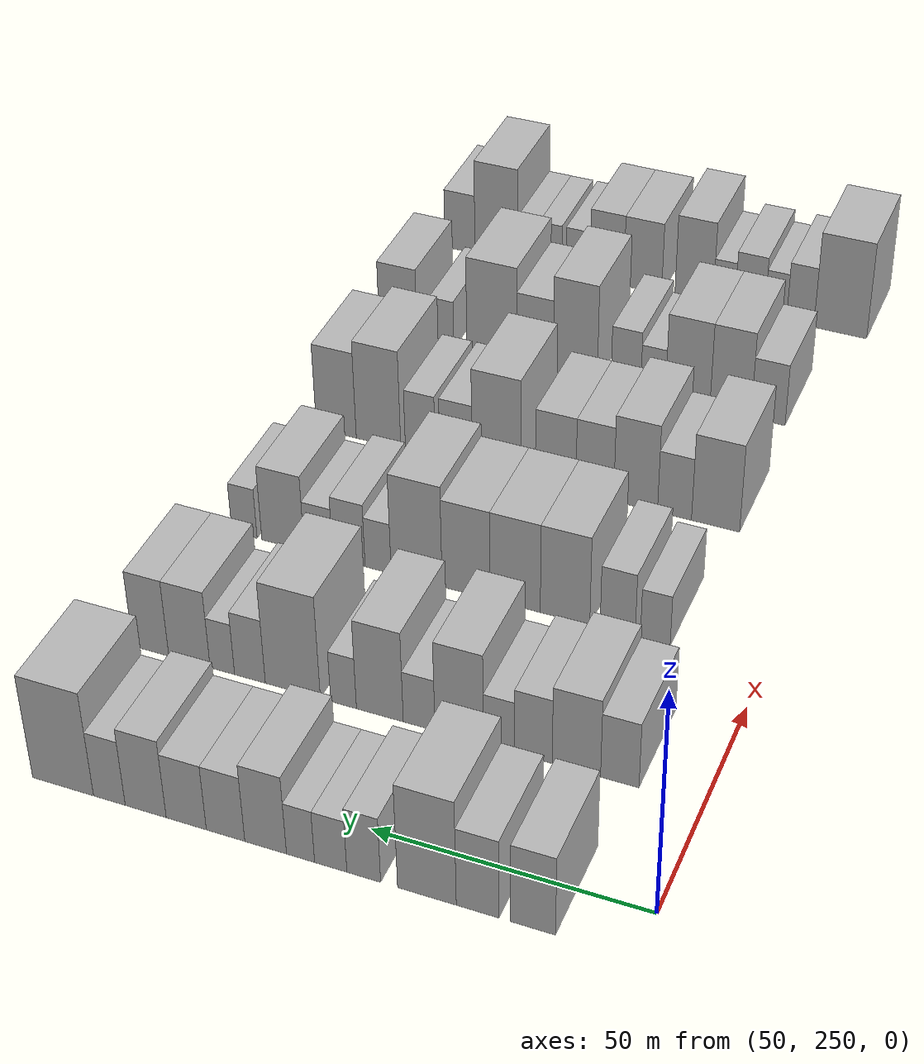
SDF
<sdf version="1.6">
 <world name="default">
  <model name="building_90">
   <static>1</static>
   <pose>50.0000 267.4633 0 0.000000 0.000000 0.000000</pose>
   <link name="link">
    <pose>0 0 9.00 0 0 0</pose>
    <collision name="collision"><geometry><box><size>20.0000 7.6590 18.0000</size></box></geometry></collision>
    <visual name="visual">
     <cast_shadows>0</cast_shadows>
     <geometry><box><size>20.0000 7.6590 18.0000</size></box></geometry>
     <material>
      <script>
       <uri>model://HANNAS_wall/materials/scripts</uri>
       <uri>model://HANNAS_wall/materials/textures</uri>
       <name>vrc/HANNAS_wall</name>
      </script>
     </material>
    </visual>
   </link>
  </model>
  <model name="building_91">
   <static>1</static>
   <pose>50.0000 276.9901 0 0.000000 0.000000 0.000000</pose>
   <link name="link">
    <pose>0 0 9.00 0 0 0</pose>
    <collision name="collision"><geometry><box><size>20.0000 7.3944 18.0000</size></box></geometry></collision>
    <visual name="visual">
     <cast_shadows>0</cast_shadows>
     <geometry><box><size>20.0000 7.3944 18.0000</size></box></geometry>
     <material>
      <script>
       <uri>model://HANNAS_wall/materials/scripts</uri>
       <uri>model://HANNAS_wall/materials/textures</uri>
       <name>vrc/HANNAS_wall</name>
      </script>
     </material>
    </visual>
   </link>
  </model>
  <model name="building_92">
   <static>1</static>
   <pose>50.0000 285.8323 0 0.000000 0.000000 0.000000</pose>
   <link name="link">
    <pose>0 0 12.00 0 0 0</pose>
    <collision name="collision"><geometry><box><size>20.0000 10.2900 24.0000</size></box></geometry></collision>
    <visual name="visual">
     <cast_shadows>0</cast_shadows>
     <geometry><box><size>20.0000 10.2900 24.0000</size></box></geometry>
     <material>
      <script>
       <uri>model://HANNAS_wall/materials/scripts</uri>
       <uri>model://HANNAS_wall/materials/textures</uri>
       <name>vrc/HANNAS_wall</name>
      </script>
     </material>
    </visual>
   </link>
  </model>
  <model name="building_93">
   <static>1</static>
   <pose>50.0000 296.9844 0 0.000000 0.000000 0.000000</pose>
   <link name="link">
    <pose>0 0 7.50 0 0 0</pose>
    <collision name="collision"><geometry><box><size>20.0000 6.0143 15.0000</size></box></geometry></collision>
    <visual name="visual">
     <cast_shadows>0</cast_shadows>
     <geometry><box><size>20.0000 6.0143 15.0000</size></box></geometry>
     <material>
      <script>
       <uri>model://HANNAS_wall/materials/scripts</uri>
       <uri>model://HANNAS_wall/materials/textures</uri>
       <name>vrc/HANNAS_wall</name>
      </script>
     </material>
    </visual>
   </link>
  </model>
  <model name="building_94">
   <static>1</static>
   <pose>50.0000 302.8937 0 0.000000 0.000000 0.000000</pose>
   <link name="link">
    <pose>0 0 6.00 0 0 0</pose>
    <collision name="collision"><geometry><box><size>20.0000 5.8043 12.0000</size></box></geometry></collision>
    <visual name="visual">
     <cast_shadows>0</cast_shadows>
     <geometry><box><size>20.0000 5.8043 12.0000</size></box></geometry>
     <material>
      <script>
       <uri>model://HANNAS_wall/materials/scripts</uri>
       <uri>model://HANNAS_wall/materials/textures</uri>
       <name>vrc/HANNAS_wall</name>
      </script>
     </material>
    </visual>
   </link>
  </model>
  <model name="building_95">
   <static>1</static>
   <pose>50.0000 308.3409 0 0.000000 0.000000 0.000000</pose>
   <link name="link">
    <pose>0 0 6.00 0 0 0</pose>
    <collision name="collision"><geometry><box><size>20.0000 5.0900 12.0000</size></box></geometry></collision>
    <visual name="visual">
     <cast_shadows>0</cast_shadows>
     <geometry><box><size>20.0000 5.0900 12.0000</size></box></geometry>
     <material>
      <script>
       <uri>model://HANNAS_wall/materials/scripts</uri>
       <uri>model://HANNAS_wall/materials/textures</uri>
       <name>vrc/HANNAS_wall</name>
      </script>
     </material>
    </visual>
   </link>
  </model>
  <model name="building_96">
   <static>1</static>
   <pose>50.0000 314.6957 0 0.000000 0.000000 0.000000</pose>
   <link name="link">
    <pose>0 0 9.00 0 0 0</pose>
    <collision name="collision"><geometry><box><size>20.0000 7.6195 18.0000</size></box></geometry></collision>
    <visual name="visual">
     <cast_shadows>0</cast_shadows>
     <geometry><box><size>20.0000 7.6195 18.0000</size></box></geometry>
     <material>
      <script>
       <uri>model://HANNAS_wall/materials/scripts</uri>
       <uri>model://HANNAS_wall/materials/textures</uri>
       <name>vrc/HANNAS_wall</name>
      </script>
     </material>
    </visual>
   </link>
  </model>
  <model name="building_97">
   <static>1</static>
   <pose>50.0000 322.0569 0 0.000000 0.000000 0.000000</pose>
   <link name="link">
    <pose>0 0 7.50 0 0 0</pose>
    <collision name="collision"><geometry><box><size>20.0000 7.1030 15.0000</size></box></geometry></collision>
    <visual name="visual">
     <cast_shadows>0</cast_shadows>
     <geometry><box><size>20.0000 7.1030 15.0000</size></box></geometry>
     <material>
      <script>
       <uri>model://HANNAS_wall/materials/scripts</uri>
       <uri>model://HANNAS_wall/materials/textures</uri>
       <name>vrc/HANNAS_wall</name>
      </script>
     </material>
    </visual>
   </link>
  </model>
  <model name="building_98">
   <static>1</static>
   <pose>50.0000 329.3516 0 0.000000 0.000000 0.000000</pose>
   <link name="link">
    <pose>0 0 7.50 0 0 0</pose>
    <collision name="collision"><geometry><box><size>20.0000 7.4864 15.0000</size></box></geometry></collision>
    <visual name="visual">
     <cast_shadows>0</cast_shadows>
     <geometry><box><size>20.0000 7.4864 15.0000</size></box></geometry>
     <material>
      <script>
       <uri>model://HANNAS_wall/materials/scripts</uri>
       <uri>model://HANNAS_wall/materials/textures</uri>
       <name>vrc/HANNAS_wall</name>
      </script>
     </material>
    </visual>
   </link>
  </model>
  <model name="building_99">
   <static>1</static>
   <pose>50.0000 336.9601 0 0.000000 0.000000 0.000000</pose>
   <link name="link">
    <pose>0 0 9.00 0 0 0</pose>
    <collision name="collision"><geometry><box><size>20.0000 7.7304 18.0000</size></box></geometry></collision>
    <visual name="visual">
     <cast_shadows>0</cast_shadows>
     <geometry><box><size>20.0000 7.7304 18.0000</size></box></geometry>
     <material>
      <script>
       <uri>model://HANNAS_wall/materials/scripts</uri>
       <uri>model://HANNAS_wall/materials/textures</uri>
       <name>vrc/HANNAS_wall</name>
      </script>
     </material>
    </visual>
   </link>
  </model>
  <model name="building_100">
   <static>1</static>
   <pose>50.0000 343.8478 0 0.000000 0.000000 0.000000</pose>
   <link name="link">
    <pose>0 0 7.50 0 0 0</pose>
    <collision name="collision"><geometry><box><size>20.0000 6.0451 15.0000</size></box></geometry></collision>
    <visual name="visual">
     <cast_shadows>0</cast_shadows>
     <geometry><box><size>20.0000 6.0451 15.0000</size></box></geometry>
     <material>
      <script>
       <uri>model://HANNAS_wall/materials/scripts</uri>
       <uri>model://HANNAS_wall/materials/textures</uri>
       <name>vrc/HANNAS_wall</name>
      </script>
     </material>
    </visual>
   </link>
  </model>
  <model name="building_101">
   <static>1</static>
   <pose>50.0000 352.7280 0 0.000000 0.000000 0.000000</pose>
   <link name="link">
    <pose>0 0 12.00 0 0 0</pose>
    <collision name="collision"><geometry><box><size>20.0000 11.7153 24.0000</size></box></geometry></collision>
    <visual name="visual">
     <cast_shadows>0</cast_shadows>
     <geometry><box><size>20.0000 11.7153 24.0000</size></box></geometry>
     <material>
      <script>
       <uri>model://HANNAS_wall/materials/scripts</uri>
       <uri>model://HANNAS_wall/materials/textures</uri>
       <name>vrc/HANNAS_wall</name>
      </script>
     </material>
    </visual>
   </link>
  </model>
  <model name="building_220">
   <static>1</static>
   <pose>85.0000 265.0072 0 0.000000 0.000000 0.000000</pose>
   <link name="link">
    <pose>0 0 7.50 0 0 0</pose>
    <collision name="collision"><geometry><box><size>20.0000 6.9190 15.0000</size></box></geometry></collision>
    <visual name="visual">
     <cast_shadows>0</cast_shadows>
     <geometry><box><size>20.0000 6.9190 15.0000</size></box></geometry>
     <material>
      <script>
       <uri>model://HANNAS_wall/materials/scripts</uri>
       <uri>model://HANNAS_wall/materials/textures</uri>
       <name>vrc/HANNAS_wall</name>
      </script>
     </material>
    </visual>
   </link>
  </model>
  <model name="building_221">
   <static>1</static>
   <pose>85.0000 272.8584 0 0.000000 0.000000 0.000000</pose>
   <link name="link">
    <pose>0 0 9.00 0 0 0</pose>
    <collision name="collision"><geometry><box><size>20.0000 8.7835 18.0000</size></box></geometry></collision>
    <visual name="visual">
     <cast_shadows>0</cast_shadows>
     <geometry><box><size>20.0000 8.7835 18.0000</size></box></geometry>
     <material>
      <script>
       <uri>model://HANNAS_wall/materials/scripts</uri>
       <uri>model://HANNAS_wall/materials/textures</uri>
       <name>vrc/HANNAS_wall</name>
      </script>
     </material>
    </visual>
   </link>
  </model>
  <model name="building_222">
   <static>1</static>
   <pose>85.0000 280.7125 0 0.000000 0.000000 0.000000</pose>
   <link name="link">
    <pose>0 0 7.50 0 0 0</pose>
    <collision name="collision"><geometry><box><size>20.0000 6.9246 15.0000</size></box></geometry></collision>
    <visual name="visual">
     <cast_shadows>0</cast_shadows>
     <geometry><box><size>20.0000 6.9246 15.0000</size></box></geometry>
     <material>
      <script>
       <uri>model://HANNAS_wall/materials/scripts</uri>
       <uri>model://HANNAS_wall/materials/textures</uri>
       <name>vrc/HANNAS_wall</name>
      </script>
     </material>
    </visual>
   </link>
  </model>
  <model name="building_223">
   <static>1</static>
   <pose>85.0000 287.0395 0 0.000000 0.000000 0.000000</pose>
   <link name="link">
    <pose>0 0 6.00 0 0 0</pose>
    <collision name="collision"><geometry><box><size>20.0000 5.7294 12.0000</size></box></geometry></collision>
    <visual name="visual">
     <cast_shadows>0</cast_shadows>
     <geometry><box><size>20.0000 5.7294 12.0000</size></box></geometry>
     <material>
      <script>
       <uri>model://HANNAS_wall/materials/scripts</uri>
       <uri>model://HANNAS_wall/materials/textures</uri>
       <name>vrc/HANNAS_wall</name>
      </script>
     </material>
    </visual>
   </link>
  </model>
  <model name="building_224">
   <static>1</static>
   <pose>85.0000 294.4517 0 0.000000 0.000000 0.000000</pose>
   <link name="link">
    <pose>0 0 10.50 0 0 0</pose>
    <collision name="collision"><geometry><box><size>20.0000 9.0950 21.0000</size></box></geometry></collision>
    <visual name="visual">
     <cast_shadows>0</cast_shadows>
     <geometry><box><size>20.0000 9.0950 21.0000</size></box></geometry>
     <material>
      <script>
       <uri>model://HANNAS_wall/materials/scripts</uri>
       <uri>model://HANNAS_wall/materials/textures</uri>
       <name>vrc/HANNAS_wall</name>
      </script>
     </material>
    </visual>
   </link>
  </model>
  <model name="building_225">
   <static>1</static>
   <pose>85.0000 301.9974 0 0.000000 0.000000 0.000000</pose>
   <link name="link">
    <pose>0 0 6.00 0 0 0</pose>
    <collision name="collision"><geometry><box><size>20.0000 5.9963 12.0000</size></box></geometry></collision>
    <visual name="visual">
     <cast_shadows>0</cast_shadows>
     <geometry><box><size>20.0000 5.9963 12.0000</size></box></geometry>
     <material>
      <script>
       <uri>model://HANNAS_wall/materials/scripts</uri>
       <uri>model://HANNAS_wall/materials/textures</uri>
       <name>vrc/HANNAS_wall</name>
      </script>
     </material>
    </visual>
   </link>
  </model>
  <model name="building_226">
   <static>1</static>
   <pose>85.0000 309.4690 0 0.000000 0.000000 0.000000</pose>
   <link name="link">
    <pose>0 0 10.50 0 0 0</pose>
    <collision name="collision"><geometry><box><size>20.0000 8.9469 21.0000</size></box></geometry></collision>
    <visual name="visual">
     <cast_shadows>0</cast_shadows>
     <geometry><box><size>20.0000 8.9469 21.0000</size></box></geometry>
     <material>
      <script>
       <uri>model://HANNAS_wall/materials/scripts</uri>
       <uri>model://HANNAS_wall/materials/textures</uri>
       <name>vrc/HANNAS_wall</name>
      </script>
     </material>
    </visual>
   </link>
  </model>
  <model name="building_227">
   <static>1</static>
   <pose>85.0000 316.4232 0 0.000000 0.000000 0.000000</pose>
   <link name="link">
    <pose>0 0 6.00 0 0 0</pose>
    <collision name="collision"><geometry><box><size>20.0000 4.9615 12.0000</size></box></geometry></collision>
    <visual name="visual">
     <cast_shadows>0</cast_shadows>
     <geometry><box><size>20.0000 4.9615 12.0000</size></box></geometry>
     <material>
      <script>
       <uri>model://HANNAS_wall/materials/scripts</uri>
       <uri>model://HANNAS_wall/materials/textures</uri>
       <name>vrc/HANNAS_wall</name>
      </script>
     </material>
    </visual>
   </link>
  </model>
  <model name="building_228">
   <static>1</static>
   <pose>85.0000 326.2820 0 0.000000 0.000000 0.000000</pose>
   <link name="link">
    <pose>0 0 12.00 0 0 0</pose>
    <collision name="collision"><geometry><box><size>20.0000 10.7560 24.0000</size></box></geometry></collision>
    <visual name="visual">
     <cast_shadows>0</cast_shadows>
     <geometry><box><size>20.0000 10.7560 24.0000</size></box></geometry>
     <material>
      <script>
       <uri>model://HANNAS_wall/materials/scripts</uri>
       <uri>model://HANNAS_wall/materials/textures</uri>
       <name>vrc/HANNAS_wall</name>
      </script>
     </material>
    </visual>
   </link>
  </model>
  <model name="building_229">
   <static>1</static>
   <pose>85.0000 334.6974 0 0.000000 0.000000 0.000000</pose>
   <link name="link">
    <pose>0 0 7.50 0 0 0</pose>
    <collision name="collision"><geometry><box><size>20.0000 6.0748 15.0000</size></box></geometry></collision>
    <visual name="visual">
     <cast_shadows>0</cast_shadows>
     <geometry><box><size>20.0000 6.0748 15.0000</size></box></geometry>
     <material>
      <script>
       <uri>model://HANNAS_wall/materials/scripts</uri>
       <uri>model://HANNAS_wall/materials/textures</uri>
       <name>vrc/HANNAS_wall</name>
      </script>
     </material>
    </visual>
   </link>
  </model>
  <model name="building_230">
   <static>1</static>
   <pose>85.0000 340.1680 0 0.000000 0.000000 0.000000</pose>
   <link name="link">
    <pose>0 0 6.00 0 0 0</pose>
    <collision name="collision"><geometry><box><size>20.0000 4.8662 12.0000</size></box></geometry></collision>
    <visual name="visual">
     <cast_shadows>0</cast_shadows>
     <geometry><box><size>20.0000 4.8662 12.0000</size></box></geometry>
     <material>
      <script>
       <uri>model://HANNAS_wall/materials/scripts</uri>
       <uri>model://HANNAS_wall/materials/textures</uri>
       <name>vrc/HANNAS_wall</name>
      </script>
     </material>
    </visual>
   </link>
  </model>
  <model name="building_231">
   <static>1</static>
   <pose>85.0000 346.7523 0 0.000000 0.000000 0.000000</pose>
   <link name="link">
    <pose>0 0 9.00 0 0 0</pose>
    <collision name="collision"><geometry><box><size>20.0000 8.3025 18.0000</size></box></geometry></collision>
    <visual name="visual">
     <cast_shadows>0</cast_shadows>
     <geometry><box><size>20.0000 8.3025 18.0000</size></box></geometry>
     <material>
      <script>
       <uri>model://HANNAS_wall/materials/scripts</uri>
       <uri>model://HANNAS_wall/materials/textures</uri>
       <name>vrc/HANNAS_wall</name>
      </script>
     </material>
    </visual>
   </link>
  </model>
  <model name="building_232">
   <static>1</static>
   <pose>85.0000 354.5277 0 0.000000 0.000000 0.000000</pose>
   <link name="link">
    <pose>0 0 9.00 0 0 0</pose>
    <collision name="collision"><geometry><box><size>20.0000 7.2482 18.0000</size></box></geometry></collision>
    <visual name="visual">
     <cast_shadows>0</cast_shadows>
     <geometry><box><size>20.0000 7.2482 18.0000</size></box></geometry>
     <material>
      <script>
       <uri>model://HANNAS_wall/materials/scripts</uri>
       <uri>model://HANNAS_wall/materials/textures</uri>
       <name>vrc/HANNAS_wall</name>
      </script>
     </material>
    </visual>
   </link>
  </model>
  <model name="building_345">
   <static>1</static>
   <pose>120.0000 270.3871 0 0.000000 0.000000 0.000000</pose>
   <link name="link">
    <pose>0 0 6.00 0 0 0</pose>
    <collision name="collision"><geometry><box><size>20.0000 5.6874 12.0000</size></box></geometry></collision>
    <visual name="visual">
     <cast_shadows>0</cast_shadows>
     <geometry><box><size>20.0000 5.6874 12.0000</size></box></geometry>
     <material>
      <script>
       <uri>model://HANNAS_wall/materials/scripts</uri>
       <uri>model://HANNAS_wall/materials/textures</uri>
       <name>vrc/HANNAS_wall</name>
      </script>
     </material>
    </visual>
   </link>
  </model>
  <model name="building_346">
   <static>1</static>
   <pose>120.0000 277.6049 0 0.000000 0.000000 0.000000</pose>
   <link name="link">
    <pose>0 0 7.50 0 0 0</pose>
    <collision name="collision"><geometry><box><size>20.0000 6.7481 15.0000</size></box></geometry></collision>
    <visual name="visual">
     <cast_shadows>0</cast_shadows>
     <geometry><box><size>20.0000 6.7481 15.0000</size></box></geometry>
     <material>
      <script>
       <uri>model://HANNAS_wall/materials/scripts</uri>
       <uri>model://HANNAS_wall/materials/textures</uri>
       <name>vrc/HANNAS_wall</name>
      </script>
     </material>
    </visual>
   </link>
  </model>
  <model name="building_347">
   <static>1</static>
   <pose>120.0000 287.8095 0 0.000000 0.000000 0.000000</pose>
   <link name="link">
    <pose>0 0 10.50 0 0 0</pose>
    <collision name="collision"><geometry><box><size>20.0000 9.6611 21.0000</size></box></geometry></collision>
    <visual name="visual">
     <cast_shadows>0</cast_shadows>
     <geometry><box><size>20.0000 9.6611 21.0000</size></box></geometry>
     <material>
      <script>
       <uri>model://HANNAS_wall/materials/scripts</uri>
       <uri>model://HANNAS_wall/materials/textures</uri>
       <name>vrc/HANNAS_wall</name>
      </script>
     </material>
    </visual>
   </link>
  </model>
  <model name="building_348">
   <static>1</static>
   <pose>120.0000 297.6020 0 0.000000 0.000000 0.000000</pose>
   <link name="link">
    <pose>0 0 10.50 0 0 0</pose>
    <collision name="collision"><geometry><box><size>20.0000 9.9241 21.0000</size></box></geometry></collision>
    <visual name="visual">
     <cast_shadows>0</cast_shadows>
     <geometry><box><size>20.0000 9.9241 21.0000</size></box></geometry>
     <material>
      <script>
       <uri>model://HANNAS_wall/materials/scripts</uri>
       <uri>model://HANNAS_wall/materials/textures</uri>
       <name>vrc/HANNAS_wall</name>
      </script>
     </material>
    </visual>
   </link>
  </model>
  <model name="building_349">
   <static>1</static>
   <pose>120.0000 307.3539 0 0.000000 0.000000 0.000000</pose>
   <link name="link">
    <pose>0 0 10.50 0 0 0</pose>
    <collision name="collision"><geometry><box><size>20.0000 9.5798 21.0000</size></box></geometry></collision>
    <visual name="visual">
     <cast_shadows>0</cast_shadows>
     <geometry><box><size>20.0000 9.5798 21.0000</size></box></geometry>
     <material>
      <script>
       <uri>model://HANNAS_wall/materials/scripts</uri>
       <uri>model://HANNAS_wall/materials/textures</uri>
       <name>vrc/HANNAS_wall</name>
      </script>
     </material>
    </visual>
   </link>
  </model>
  <model name="building_350">
   <static>1</static>
   <pose>120.0000 317.3137 0 0.000000 0.000000 0.000000</pose>
   <link name="link">
    <pose>0 0 12.00 0 0 0</pose>
    <collision name="collision"><geometry><box><size>20.0000 10.3397 24.0000</size></box></geometry></collision>
    <visual name="visual">
     <cast_shadows>0</cast_shadows>
     <geometry><box><size>20.0000 10.3397 24.0000</size></box></geometry>
     <material>
      <script>
       <uri>model://HANNAS_wall/materials/scripts</uri>
       <uri>model://HANNAS_wall/materials/textures</uri>
       <name>vrc/HANNAS_wall</name>
      </script>
     </material>
    </visual>
   </link>
  </model>
  <model name="building_351">
   <static>1</static>
   <pose>120.0000 325.1560 0 0.000000 0.000000 0.000000</pose>
   <link name="link">
    <pose>0 0 6.00 0 0 0</pose>
    <collision name="collision"><geometry><box><size>20.0000 5.3449 12.0000</size></box></geometry></collision>
    <visual name="visual">
     <cast_shadows>0</cast_shadows>
     <geometry><box><size>20.0000 5.3449 12.0000</size></box></geometry>
     <material>
      <script>
       <uri>model://HANNAS_wall/materials/scripts</uri>
       <uri>model://HANNAS_wall/materials/textures</uri>
       <name>vrc/HANNAS_wall</name>
      </script>
     </material>
    </visual>
   </link>
  </model>
  <model name="building_352">
   <static>1</static>
   <pose>120.0000 331.1573 0 0.000000 0.000000 0.000000</pose>
   <link name="link">
    <pose>0 0 7.50 0 0 0</pose>
    <collision name="collision"><geometry><box><size>20.0000 6.6576 15.0000</size></box></geometry></collision>
    <visual name="visual">
     <cast_shadows>0</cast_shadows>
     <geometry><box><size>20.0000 6.6576 15.0000</size></box></geometry>
     <material>
      <script>
       <uri>model://HANNAS_wall/materials/scripts</uri>
       <uri>model://HANNAS_wall/materials/textures</uri>
       <name>vrc/HANNAS_wall</name>
      </script>
     </material>
    </visual>
   </link>
  </model>
  <model name="building_353">
   <static>1</static>
   <pose>120.0000 337.4495 0 0.000000 0.000000 0.000000</pose>
   <link name="link">
    <pose>0 0 6.00 0 0 0</pose>
    <collision name="collision"><geometry><box><size>20.0000 5.9270 12.0000</size></box></geometry></collision>
    <visual name="visual">
     <cast_shadows>0</cast_shadows>
     <geometry><box><size>20.0000 5.9270 12.0000</size></box></geometry>
     <material>
      <script>
       <uri>model://HANNAS_wall/materials/scripts</uri>
       <uri>model://HANNAS_wall/materials/textures</uri>
       <name>vrc/HANNAS_wall</name>
      </script>
     </material>
    </visual>
   </link>
  </model>
  <model name="building_354">
   <static>1</static>
   <pose>120.0000 344.8628 0 0.000000 0.000000 0.000000</pose>
   <link name="link">
    <pose>0 0 9.00 0 0 0</pose>
    <collision name="collision"><geometry><box><size>20.0000 8.8996 18.0000</size></box></geometry></collision>
    <visual name="visual">
     <cast_shadows>0</cast_shadows>
     <geometry><box><size>20.0000 8.8996 18.0000</size></box></geometry>
     <material>
      <script>
       <uri>model://HANNAS_wall/materials/scripts</uri>
       <uri>model://HANNAS_wall/materials/textures</uri>
       <name>vrc/HANNAS_wall</name>
      </script>
     </material>
    </visual>
   </link>
  </model>
  <model name="building_355">
   <static>1</static>
   <pose>120.0000 352.9798 0 0.000000 0.000000 0.000000</pose>
   <link name="link">
    <pose>0 0 6.00 0 0 0</pose>
    <collision name="collision"><geometry><box><size>20.0000 5.3344 12.0000</size></box></geometry></collision>
    <visual name="visual">
     <cast_shadows>0</cast_shadows>
     <geometry><box><size>20.0000 5.3344 12.0000</size></box></geometry>
     <material>
      <script>
       <uri>model://HANNAS_wall/materials/scripts</uri>
       <uri>model://HANNAS_wall/materials/textures</uri>
       <name>vrc/HANNAS_wall</name>
      </script>
     </material>
    </visual>
   </link>
  </model>
  <model name="building_469">
   <static>1</static>
   <pose>155.0000 269.9406 0 0.000000 0.000000 0.000000</pose>
   <link name="link">
    <pose>0 0 10.50 0 0 0</pose>
    <collision name="collision"><geometry><box><size>20.0000 9.6573 21.0000</size></box></geometry></collision>
    <visual name="visual">
     <cast_shadows>0</cast_shadows>
     <geometry><box><size>20.0000 9.6573 21.0000</size></box></geometry>
     <material>
      <script>
       <uri>model://HANNAS_wall/materials/scripts</uri>
       <uri>model://HANNAS_wall/materials/textures</uri>
       <name>vrc/HANNAS_wall</name>
      </script>
     </material>
    </visual>
   </link>
  </model>
  <model name="building_470">
   <static>1</static>
   <pose>155.0000 278.2128 0 0.000000 0.000000 0.000000</pose>
   <link name="link">
    <pose>0 0 7.50 0 0 0</pose>
    <collision name="collision"><geometry><box><size>20.0000 6.8871 15.0000</size></box></geometry></collision>
    <visual name="visual">
     <cast_shadows>0</cast_shadows>
     <geometry><box><size>20.0000 6.8871 15.0000</size></box></geometry>
     <material>
      <script>
       <uri>model://HANNAS_wall/materials/scripts</uri>
       <uri>model://HANNAS_wall/materials/textures</uri>
       <name>vrc/HANNAS_wall</name>
      </script>
     </material>
    </visual>
   </link>
  </model>
  <model name="building_471">
   <static>1</static>
   <pose>155.0000 286.1405 0 0.000000 0.000000 0.000000</pose>
   <link name="link">
    <pose>0 0 10.50 0 0 0</pose>
    <collision name="collision"><geometry><box><size>20.0000 8.9684 21.0000</size></box></geometry></collision>
    <visual name="visual">
     <cast_shadows>0</cast_shadows>
     <geometry><box><size>20.0000 8.9684 21.0000</size></box></geometry>
     <material>
      <script>
       <uri>model://HANNAS_wall/materials/scripts</uri>
       <uri>model://HANNAS_wall/materials/textures</uri>
       <name>vrc/HANNAS_wall</name>
      </script>
     </material>
    </visual>
   </link>
  </model>
  <model name="building_472">
   <static>1</static>
   <pose>155.0000 294.5356 0 0.000000 0.000000 0.000000</pose>
   <link name="link">
    <pose>0 0 9.00 0 0 0</pose>
    <collision name="collision"><geometry><box><size>20.0000 7.8217 18.0000</size></box></geometry></collision>
    <visual name="visual">
     <cast_shadows>0</cast_shadows>
     <geometry><box><size>20.0000 7.8217 18.0000</size></box></geometry>
     <material>
      <script>
       <uri>model://HANNAS_wall/materials/scripts</uri>
       <uri>model://HANNAS_wall/materials/textures</uri>
       <name>vrc/HANNAS_wall</name>
      </script>
     </material>
    </visual>
   </link>
  </model>
  <model name="building_473">
   <static>1</static>
   <pose>155.0000 302.6674 0 0.000000 0.000000 0.000000</pose>
   <link name="link">
    <pose>0 0 9.00 0 0 0</pose>
    <collision name="collision"><geometry><box><size>20.0000 8.4420 18.0000</size></box></geometry></collision>
    <visual name="visual">
     <cast_shadows>0</cast_shadows>
     <geometry><box><size>20.0000 8.4420 18.0000</size></box></geometry>
     <material>
      <script>
       <uri>model://HANNAS_wall/materials/scripts</uri>
       <uri>model://HANNAS_wall/materials/textures</uri>
       <name>vrc/HANNAS_wall</name>
      </script>
     </material>
    </visual>
   </link>
  </model>
  <model name="building_474">
   <static>1</static>
   <pose>155.0000 315.0528 0 0.000000 0.000000 0.000000</pose>
   <link name="link">
    <pose>0 0 12.00 0 0 0</pose>
    <collision name="collision"><geometry><box><size>20.0000 10.3289 24.0000</size></box></geometry></collision>
    <visual name="visual">
     <cast_shadows>0</cast_shadows>
     <geometry><box><size>20.0000 10.3289 24.0000</size></box></geometry>
     <material>
      <script>
       <uri>model://HANNAS_wall/materials/scripts</uri>
       <uri>model://HANNAS_wall/materials/textures</uri>
       <name>vrc/HANNAS_wall</name>
      </script>
     </material>
    </visual>
   </link>
  </model>
  <model name="building_475">
   <static>1</static>
   <pose>155.0000 323.6714 0 0.000000 0.000000 0.000000</pose>
   <link name="link">
    <pose>0 0 7.50 0 0 0</pose>
    <collision name="collision"><geometry><box><size>20.0000 6.9082 15.0000</size></box></geometry></collision>
    <visual name="visual">
     <cast_shadows>0</cast_shadows>
     <geometry><box><size>20.0000 6.9082 15.0000</size></box></geometry>
     <material>
      <script>
       <uri>model://HANNAS_wall/materials/scripts</uri>
       <uri>model://HANNAS_wall/materials/textures</uri>
       <name>vrc/HANNAS_wall</name>
      </script>
     </material>
    </visual>
   </link>
  </model>
  <model name="building_476">
   <static>1</static>
   <pose>155.0000 331.3503 0 0.000000 0.000000 0.000000</pose>
   <link name="link">
    <pose>0 0 7.50 0 0 0</pose>
    <collision name="collision"><geometry><box><size>20.0000 6.4497 15.0000</size></box></geometry></collision>
    <visual name="visual">
     <cast_shadows>0</cast_shadows>
     <geometry><box><size>20.0000 6.4497 15.0000</size></box></geometry>
     <material>
      <script>
       <uri>model://HANNAS_wall/materials/scripts</uri>
       <uri>model://HANNAS_wall/materials/textures</uri>
       <name>vrc/HANNAS_wall</name>
      </script>
     </material>
    </visual>
   </link>
  </model>
  <model name="building_477">
   <static>1</static>
   <pose>155.0000 340.4342 0 0.000000 0.000000 0.000000</pose>
   <link name="link">
    <pose>0 0 12.00 0 0 0</pose>
    <collision name="collision"><geometry><box><size>20.0000 9.7179 24.0000</size></box></geometry></collision>
    <visual name="visual">
     <cast_shadows>0</cast_shadows>
     <geometry><box><size>20.0000 9.7179 24.0000</size></box></geometry>
     <material>
      <script>
       <uri>model://HANNAS_wall/materials/scripts</uri>
       <uri>model://HANNAS_wall/materials/textures</uri>
       <name>vrc/HANNAS_wall</name>
      </script>
     </material>
    </visual>
   </link>
  </model>
  <model name="building_478">
   <static>1</static>
   <pose>155.0000 349.6874 0 0.000000 0.000000 0.000000</pose>
   <link name="link">
    <pose>0 0 10.50 0 0 0</pose>
    <collision name="collision"><geometry><box><size>20.0000 8.7886 21.0000</size></box></geometry></collision>
    <visual name="visual">
     <cast_shadows>0</cast_shadows>
     <geometry><box><size>20.0000 8.7886 21.0000</size></box></geometry>
     <material>
      <script>
       <uri>model://HANNAS_wall/materials/scripts</uri>
       <uri>model://HANNAS_wall/materials/textures</uri>
       <name>vrc/HANNAS_wall</name>
      </script>
     </material>
    </visual>
   </link>
  </model>
  <model name="building_596">
   <static>1</static>
   <pose>190.0000 269.7857 0 0.000000 0.000000 0.000000</pose>
   <link name="link">
    <pose>0 0 7.50 0 0 0</pose>
    <collision name="collision"><geometry><box><size>20.0000 7.1668 15.0000</size></box></geometry></collision>
    <visual name="visual">
     <cast_shadows>0</cast_shadows>
     <geometry><box><size>20.0000 7.1668 15.0000</size></box></geometry>
     <material>
      <script>
       <uri>model://HANNAS_wall/materials/scripts</uri>
       <uri>model://HANNAS_wall/materials/textures</uri>
       <name>vrc/HANNAS_wall</name>
      </script>
     </material>
    </visual>
   </link>
  </model>
  <model name="building_597">
   <static>1</static>
   <pose>190.0000 277.7440 0 0.000000 0.000000 0.000000</pose>
   <link name="link">
    <pose>0 0 10.50 0 0 0</pose>
    <collision name="collision"><geometry><box><size>20.0000 8.7497 21.0000</size></box></geometry></collision>
    <visual name="visual">
     <cast_shadows>0</cast_shadows>
     <geometry><box><size>20.0000 8.7497 21.0000</size></box></geometry>
     <material>
      <script>
       <uri>model://HANNAS_wall/materials/scripts</uri>
       <uri>model://HANNAS_wall/materials/textures</uri>
       <name>vrc/HANNAS_wall</name>
      </script>
     </material>
    </visual>
   </link>
  </model>
  <model name="building_598">
   <static>1</static>
   <pose>190.0000 286.8873 0 0.000000 0.000000 0.000000</pose>
   <link name="link">
    <pose>0 0 10.50 0 0 0</pose>
    <collision name="collision"><geometry><box><size>20.0000 9.5368 21.0000</size></box></geometry></collision>
    <visual name="visual">
     <cast_shadows>0</cast_shadows>
     <geometry><box><size>20.0000 9.5368 21.0000</size></box></geometry>
     <material>
      <script>
       <uri>model://HANNAS_wall/materials/scripts</uri>
       <uri>model://HANNAS_wall/materials/textures</uri>
       <name>vrc/HANNAS_wall</name>
      </script>
     </material>
    </visual>
   </link>
  </model>
  <model name="building_599">
   <static>1</static>
   <pose>190.0000 294.3373 0 0.000000 0.000000 0.000000</pose>
   <link name="link">
    <pose>0 0 6.00 0 0 0</pose>
    <collision name="collision"><geometry><box><size>20.0000 5.3632 12.0000</size></box></geometry></collision>
    <visual name="visual">
     <cast_shadows>0</cast_shadows>
     <geometry><box><size>20.0000 5.3632 12.0000</size></box></geometry>
     <material>
      <script>
       <uri>model://HANNAS_wall/materials/scripts</uri>
       <uri>model://HANNAS_wall/materials/textures</uri>
       <name>vrc/HANNAS_wall</name>
      </script>
     </material>
    </visual>
   </link>
  </model>
  <model name="building_600">
   <static>1</static>
   <pose>190.0000 300.2505 0 0.000000 0.000000 0.000000</pose>
   <link name="link">
    <pose>0 0 7.50 0 0 0</pose>
    <collision name="collision"><geometry><box><size>20.0000 6.4632 15.0000</size></box></geometry></collision>
    <visual name="visual">
     <cast_shadows>0</cast_shadows>
     <geometry><box><size>20.0000 6.4632 15.0000</size></box></geometry>
     <material>
      <script>
       <uri>model://HANNAS_wall/materials/scripts</uri>
       <uri>model://HANNAS_wall/materials/textures</uri>
       <name>vrc/HANNAS_wall</name>
      </script>
     </material>
    </visual>
   </link>
  </model>
  <model name="building_601">
   <static>1</static>
   <pose>190.0000 311.3385 0 0.000000 0.000000 0.000000</pose>
   <link name="link">
    <pose>0 0 12.00 0 0 0</pose>
    <collision name="collision"><geometry><box><size>20.0000 9.7128 24.0000</size></box></geometry></collision>
    <visual name="visual">
     <cast_shadows>0</cast_shadows>
     <geometry><box><size>20.0000 9.7128 24.0000</size></box></geometry>
     <material>
      <script>
       <uri>model://HANNAS_wall/materials/scripts</uri>
       <uri>model://HANNAS_wall/materials/textures</uri>
       <name>vrc/HANNAS_wall</name>
      </script>
     </material>
    </visual>
   </link>
  </model>
  <model name="building_602">
   <static>1</static>
   <pose>190.0000 320.2386 0 0.000000 0.000000 0.000000</pose>
   <link name="link">
    <pose>0 0 9.00 0 0 0</pose>
    <collision name="collision"><geometry><box><size>20.0000 8.0873 18.0000</size></box></geometry></collision>
    <visual name="visual">
     <cast_shadows>0</cast_shadows>
     <geometry><box><size>20.0000 8.0873 18.0000</size></box></geometry>
     <material>
      <script>
       <uri>model://HANNAS_wall/materials/scripts</uri>
       <uri>model://HANNAS_wall/materials/textures</uri>
       <name>vrc/HANNAS_wall</name>
      </script>
     </material>
    </visual>
   </link>
  </model>
  <model name="building_603">
   <static>1</static>
   <pose>190.0000 329.8908 0 0.000000 0.000000 0.000000</pose>
   <link name="link">
    <pose>0 0 12.00 0 0 0</pose>
    <collision name="collision"><geometry><box><size>20.0000 11.2172 24.0000</size></box></geometry></collision>
    <visual name="visual">
     <cast_shadows>0</cast_shadows>
     <geometry><box><size>20.0000 11.2172 24.0000</size></box></geometry>
     <material>
      <script>
       <uri>model://HANNAS_wall/materials/scripts</uri>
       <uri>model://HANNAS_wall/materials/textures</uri>
       <name>vrc/HANNAS_wall</name>
      </script>
     </material>
    </visual>
   </link>
  </model>
  <model name="building_604">
   <static>1</static>
   <pose>190.0000 341.1844 0 0.000000 0.000000 0.000000</pose>
   <link name="link">
    <pose>0 0 6.00 0 0 0</pose>
    <collision name="collision"><geometry><box><size>20.0000 5.3700 12.0000</size></box></geometry></collision>
    <visual name="visual">
     <cast_shadows>0</cast_shadows>
     <geometry><box><size>20.0000 5.3700 12.0000</size></box></geometry>
     <material>
      <script>
       <uri>model://HANNAS_wall/materials/scripts</uri>
       <uri>model://HANNAS_wall/materials/textures</uri>
       <name>vrc/HANNAS_wall</name>
      </script>
     </material>
    </visual>
   </link>
  </model>
  <model name="building_605">
   <static>1</static>
   <pose>190.0000 351.2071 0 0.000000 0.000000 0.000000</pose>
   <link name="link">
    <pose>0 0 9.00 0 0 0</pose>
    <collision name="collision"><geometry><box><size>20.0000 8.6753 18.0000</size></box></geometry></collision>
    <visual name="visual">
     <cast_shadows>0</cast_shadows>
     <geometry><box><size>20.0000 8.6753 18.0000</size></box></geometry>
     <material>
      <script>
       <uri>model://HANNAS_wall/materials/scripts</uri>
       <uri>model://HANNAS_wall/materials/textures</uri>
       <name>vrc/HANNAS_wall</name>
      </script>
     </material>
    </visual>
   </link>
  </model>
  <model name="building_719">
   <static>1</static>
   <pose>225.0000 264.1785 0 0.000000 0.000000 0.000000</pose>
   <link name="link">
    <pose>0 0 12.00 0 0 0</pose>
    <collision name="collision"><geometry><box><size>20.0000 11.5729 24.0000</size></box></geometry></collision>
    <visual name="visual">
     <cast_shadows>0</cast_shadows>
     <geometry><box><size>20.0000 11.5729 24.0000</size></box></geometry>
     <material>
      <script>
       <uri>model://HANNAS_wall/materials/scripts</uri>
       <uri>model://HANNAS_wall/materials/textures</uri>
       <name>vrc/HANNAS_wall</name>
      </script>
     </material>
    </visual>
   </link>
  </model>
  <model name="building_720">
   <static>1</static>
   <pose>225.0000 272.9861 0 0.000000 0.000000 0.000000</pose>
   <link name="link">
    <pose>0 0 7.50 0 0 0</pose>
    <collision name="collision"><geometry><box><size>20.0000 6.0421 15.0000</size></box></geometry></collision>
    <visual name="visual">
     <cast_shadows>0</cast_shadows>
     <geometry><box><size>20.0000 6.0421 15.0000</size></box></geometry>
     <material>
      <script>
       <uri>model://HANNAS_wall/materials/scripts</uri>
       <uri>model://HANNAS_wall/materials/textures</uri>
       <name>vrc/HANNAS_wall</name>
      </script>
     </material>
    </visual>
   </link>
  </model>
  <model name="building_721">
   <static>1</static>
   <pose>225.0000 278.4346 0 0.000000 0.000000 0.000000</pose>
   <link name="link">
    <pose>0 0 6.00 0 0 0</pose>
    <collision name="collision"><geometry><box><size>20.0000 4.8549 12.0000</size></box></geometry></collision>
    <visual name="visual">
     <cast_shadows>0</cast_shadows>
     <geometry><box><size>20.0000 4.8549 12.0000</size></box></geometry>
     <material>
      <script>
       <uri>model://HANNAS_wall/materials/scripts</uri>
       <uri>model://HANNAS_wall/materials/textures</uri>
       <name>vrc/HANNAS_wall</name>
      </script>
     </material>
    </visual>
   </link>
  </model>
  <model name="building_722">
   <static>1</static>
   <pose>225.0000 284.2095 0 0.000000 0.000000 0.000000</pose>
   <link name="link">
    <pose>0 0 7.50 0 0 0</pose>
    <collision name="collision"><geometry><box><size>20.0000 6.6948 15.0000</size></box></geometry></collision>
    <visual name="visual">
     <cast_shadows>0</cast_shadows>
     <geometry><box><size>20.0000 6.6948 15.0000</size></box></geometry>
     <material>
      <script>
       <uri>model://HANNAS_wall/materials/scripts</uri>
       <uri>model://HANNAS_wall/materials/textures</uri>
       <name>vrc/HANNAS_wall</name>
      </script>
     </material>
    </visual>
   </link>
  </model>
  <model name="building_723">
   <static>1</static>
   <pose>225.0000 290.0117 0 0.000000 0.000000 0.000000</pose>
   <link name="link">
    <pose>0 0 6.00 0 0 0</pose>
    <collision name="collision"><geometry><box><size>20.0000 4.9096 12.0000</size></box></geometry></collision>
    <visual name="visual">
     <cast_shadows>0</cast_shadows>
     <geometry><box><size>20.0000 4.9096 12.0000</size></box></geometry>
     <material>
      <script>
       <uri>model://HANNAS_wall/materials/scripts</uri>
       <uri>model://HANNAS_wall/materials/textures</uri>
       <name>vrc/HANNAS_wall</name>
      </script>
     </material>
    </visual>
   </link>
  </model>
  <model name="building_724">
   <static>1</static>
   <pose>225.0000 296.7832 0 0.000000 0.000000 0.000000</pose>
   <link name="link">
    <pose>0 0 10.50 0 0 0</pose>
    <collision name="collision"><geometry><box><size>20.0000 8.6335 21.0000</size></box></geometry></collision>
    <visual name="visual">
     <cast_shadows>0</cast_shadows>
     <geometry><box><size>20.0000 8.6335 21.0000</size></box></geometry>
     <material>
      <script>
       <uri>model://HANNAS_wall/materials/scripts</uri>
       <uri>model://HANNAS_wall/materials/textures</uri>
       <name>vrc/HANNAS_wall</name>
      </script>
     </material>
    </visual>
   </link>
  </model>
  <model name="building_725">
   <static>1</static>
   <pose>225.0000 308.4544 0 0.000000 0.000000 0.000000</pose>
   <link name="link">
    <pose>0 0 9.00 0 0 0</pose>
    <collision name="collision"><geometry><box><size>20.0000 8.7088 18.0000</size></box></geometry></collision>
    <visual name="visual">
     <cast_shadows>0</cast_shadows>
     <geometry><box><size>20.0000 8.7088 18.0000</size></box></geometry>
     <material>
      <script>
       <uri>model://HANNAS_wall/materials/scripts</uri>
       <uri>model://HANNAS_wall/materials/textures</uri>
       <name>vrc/HANNAS_wall</name>
      </script>
     </material>
    </visual>
   </link>
  </model>
  <model name="building_726">
   <static>1</static>
   <pose>225.0000 316.7343 0 0.000000 0.000000 0.000000</pose>
   <link name="link">
    <pose>0 0 9.00 0 0 0</pose>
    <collision name="collision"><geometry><box><size>20.0000 7.8510 18.0000</size></box></geometry></collision>
    <visual name="visual">
     <cast_shadows>0</cast_shadows>
     <geometry><box><size>20.0000 7.8510 18.0000</size></box></geometry>
     <material>
      <script>
       <uri>model://HANNAS_wall/materials/scripts</uri>
       <uri>model://HANNAS_wall/materials/textures</uri>
       <name>vrc/HANNAS_wall</name>
      </script>
     </material>
    </visual>
   </link>
  </model>
  <model name="building_727">
   <static>1</static>
   <pose>225.0000 323.4552 0 0.000000 0.000000 0.000000</pose>
   <link name="link">
    <pose>0 0 6.00 0 0 0</pose>
    <collision name="collision"><geometry><box><size>20.0000 5.5908 12.0000</size></box></geometry></collision>
    <visual name="visual">
     <cast_shadows>0</cast_shadows>
     <geometry><box><size>20.0000 5.5908 12.0000</size></box></geometry>
     <material>
      <script>
       <uri>model://HANNAS_wall/materials/scripts</uri>
       <uri>model://HANNAS_wall/materials/textures</uri>
       <name>vrc/HANNAS_wall</name>
      </script>
     </material>
    </visual>
   </link>
  </model>
  <model name="building_728">
   <static>1</static>
   <pose>225.0000 329.8699 0 0.000000 0.000000 0.000000</pose>
   <link name="link">
    <pose>0 0 6.00 0 0 0</pose>
    <collision name="collision"><geometry><box><size>20.0000 5.2388 12.0000</size></box></geometry></collision>
    <visual name="visual">
     <cast_shadows>0</cast_shadows>
     <geometry><box><size>20.0000 5.2388 12.0000</size></box></geometry>
     <material>
      <script>
       <uri>model://HANNAS_wall/materials/scripts</uri>
       <uri>model://HANNAS_wall/materials/textures</uri>
       <name>vrc/HANNAS_wall</name>
      </script>
     </material>
    </visual>
   </link>
  </model>
  <model name="building_729">
   <static>1</static>
   <pose>225.0000 335.0705 0 0.000000 0.000000 0.000000</pose>
   <link name="link">
    <pose>0 0 6.00 0 0 0</pose>
    <collision name="collision"><geometry><box><size>20.0000 5.1622 12.0000</size></box></geometry></collision>
    <visual name="visual">
     <cast_shadows>0</cast_shadows>
     <geometry><box><size>20.0000 5.1622 12.0000</size></box></geometry>
     <material>
      <script>
       <uri>model://HANNAS_wall/materials/scripts</uri>
       <uri>model://HANNAS_wall/materials/textures</uri>
       <name>vrc/HANNAS_wall</name>
      </script>
     </material>
    </visual>
   </link>
  </model>
  <model name="building_730">
   <static>1</static>
   <pose>225.0000 342.7056 0 0.000000 0.000000 0.000000</pose>
   <link name="link">
    <pose>0 0 12.00 0 0 0</pose>
    <collision name="collision"><geometry><box><size>20.0000 10.1082 24.0000</size></box></geometry></collision>
    <visual name="visual">
     <cast_shadows>0</cast_shadows>
     <geometry><box><size>20.0000 10.1082 24.0000</size></box></geometry>
     <material>
      <script>
       <uri>model://HANNAS_wall/materials/scripts</uri>
       <uri>model://HANNAS_wall/materials/textures</uri>
       <name>vrc/HANNAS_wall</name>
      </script>
     </material>
    </visual>
   </link>
  </model>
  <model name="building_731">
   <static>1</static>
   <pose>225.0000 351.3648 0 0.000000 0.000000 0.000000</pose>
   <link name="link">
    <pose>0 0 7.50 0 0 0</pose>
    <collision name="collision"><geometry><box><size>20.0000 7.2101 15.0000</size></box></geometry></collision>
    <visual name="visual">
     <cast_shadows>0</cast_shadows>
     <geometry><box><size>20.0000 7.2101 15.0000</size></box></geometry>
     <material>
      <script>
       <uri>model://HANNAS_wall/materials/scripts</uri>
       <uri>model://HANNAS_wall/materials/textures</uri>
       <name>vrc/HANNAS_wall</name>
      </script>
     </material>
    </visual>
   </link>
  </model>
 </world>
</sdf>
